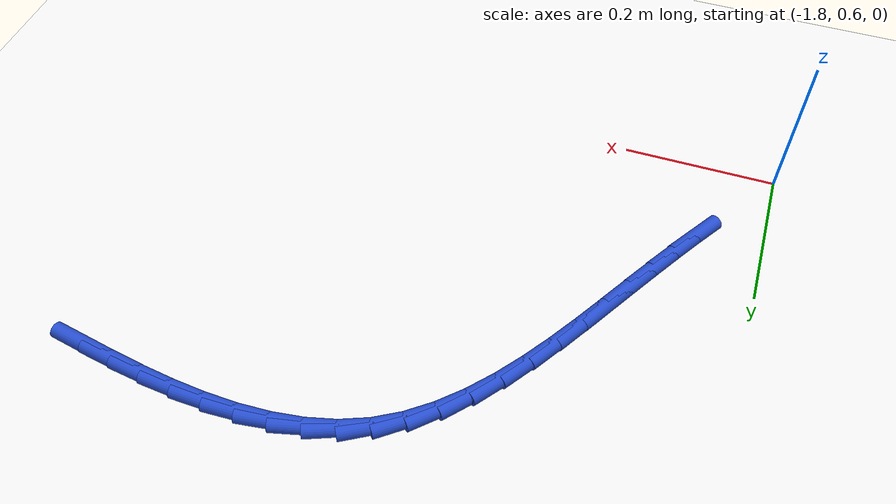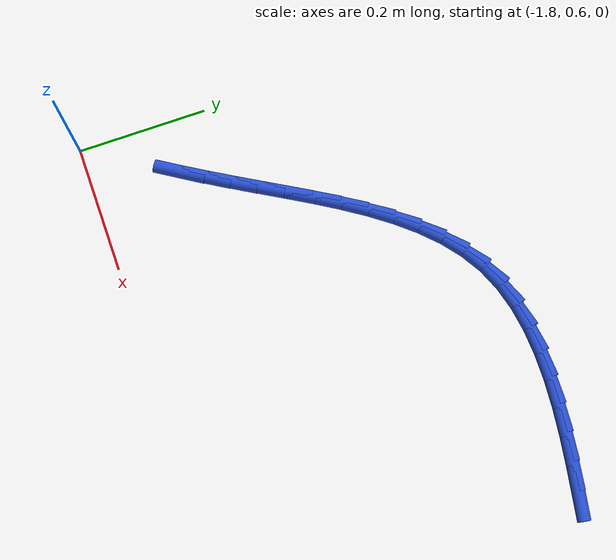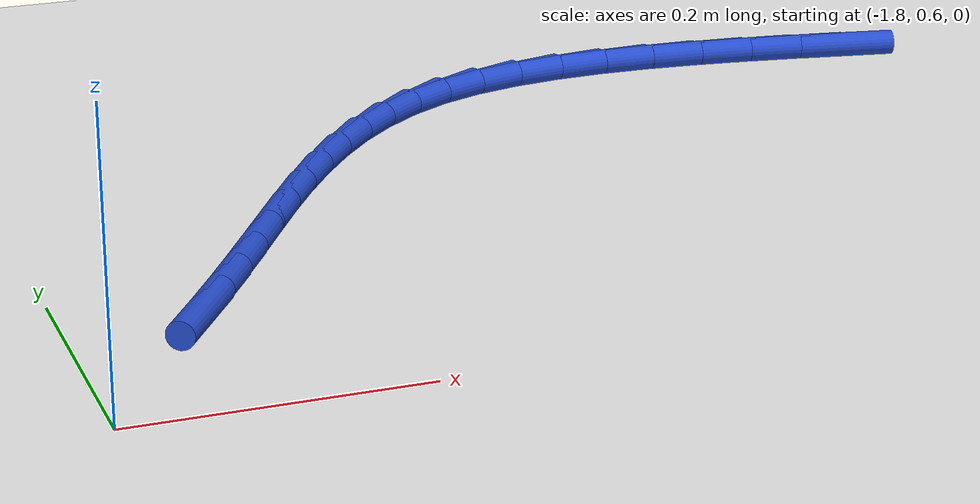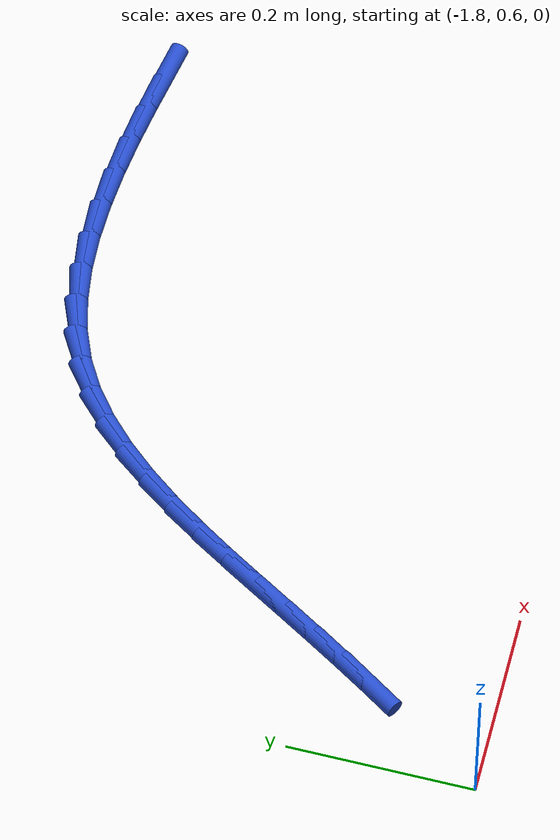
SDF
<sdf version="1.6">
 <world name="default">
  <model name="ground_plane">
   <static>1</static>
   <link name="link">
    <collision name="collision">
     <geometry><plane><normal>0 0 1</normal><size>100 100</size></plane></geometry>
     <surface><friction><ode><mu>100</mu><mu2>50</mu2></ode></friction></surface>
    </collision>
    <visual name="visual">
     <cast_shadows>0</cast_shadows>
     <geometry><plane><normal>0 0 1</normal><size>100 100</size></plane></geometry>
     <material>
      <script><uri>file://media/materials/scripts/gazebo.material</uri><name>Gazebo/WhiteGlow</name></script>
     </material>
    </visual>
   </link>
  </model>
  <model name="line">
   <link name="link_43">
    <pose>-1.0601348989069823 1.1232787393675463 0.01 0 1.57 -0.18332741471772562</pose>
    <collision name="collision">
     <geometry><cylinder><radius>0.01</radius><length>0.08</length></cylinder></geometry>
    </collision>
    <visual name="visual">
     <material>
      <script><name>Gazebo/Blue</name><uri>file://media/materials/scripts/gazebo.material</uri></script>
     </material>
     <geometry><cylinder><radius>0.01</radius><length>0.08</length></cylinder></geometry>
    </visual>
   </link>
   <link name="link_44">
    <pose>-1.1024599388031093 1.1311261919811093 0.01 0 1.57 -0.16194758488630512</pose>
    <collision name="collision">
     <geometry><cylinder><radius>0.01</radius><length>0.08</length></cylinder></geometry>
    </collision>
    <visual name="visual">
     <material>
      <script><name>Gazebo/Blue</name><uri>file://media/materials/scripts/gazebo.material</uri></script>
     </material>
     <geometry><cylinder><radius>0.01</radius><length>0.08</length></cylinder></geometry>
    </visual>
   </link>
   <link name="link_45">
    <pose>-1.1449682665481016 1.138071134470249 0.01 0 1.57 -0.12956506492319844</pose>
    <collision name="collision">
     <geometry><cylinder><radius>0.01</radius><length>0.08</length></cylinder></geometry>
    </collision>
    <visual name="visual">
     <material>
      <script><name>Gazebo/Blue</name><uri>file://media/materials/scripts/gazebo.material</uri></script>
     </material>
     <geometry><cylinder><radius>0.01</radius><length>0.08</length></cylinder></geometry>
    </visual>
   </link>
   <link name="link_46">
    <pose>-1.1873299836293625 1.1435906532974287 0.01 0 1.57 -0.08505546054984053</pose>
    <collision name="collision">
     <geometry><cylinder><radius>0.01</radius><length>0.08</length></cylinder></geometry>
    </collision>
    <visual name="visual">
     <material>
      <script><name>Gazebo/Blue</name><uri>file://media/materials/scripts/gazebo.material</uri></script>
     </material>
     <geometry><cylinder><radius>0.01</radius><length>0.08</length></cylinder></geometry>
    </visual>
   </link>
   <link name="link_47">
    <pose>-1.2292151915342975 1.147161834925113 0.01 0 1.57 -0.02676972377118209</pose>
    <collision name="collision">
     <geometry><cylinder><radius>0.01</radius><length>0.08</length></cylinder></geometry>
    </collision>
    <visual name="visual">
     <material>
      <script><name>Gazebo/Blue</name><uri>file://media/materials/scripts/gazebo.material</uri></script>
     </material>
     <geometry><cylinder><radius>0.01</radius><length>0.08</length></cylinder></geometry>
    </visual>
   </link>
   <link name="link_48">
    <pose>-1.2702939917503113 1.1482617658157661 0.01 0 1.57 0.04738850882438777</pose>
    <collision name="collision">
     <geometry><cylinder><radius>0.01</radius><length>0.08</length></cylinder></geometry>
    </collision>
    <visual name="visual">
     <material>
      <script><name>Gazebo/Blue</name><uri>file://media/materials/scripts/gazebo.material</uri></script>
     </material>
     <geometry><cylinder><radius>0.01</radius><length>0.08</length></cylinder></geometry>
    </visual>
   </link>
   <link name="link_49">
    <pose>-1.310236485764808 1.1463675324318516 0.01 0 1.57 0.13972373295222726</pose>
    <collision name="collision">
     <geometry><cylinder><radius>0.01</radius><length>0.08</length></cylinder></geometry>
    </collision>
    <visual name="visual">
     <material>
      <script><name>Gazebo/Blue</name><uri>file://media/materials/scripts/gazebo.material</uri></script>
     </material>
     <geometry><cylinder><radius>0.01</radius><length>0.08</length></cylinder></geometry>
    </visual>
   </link>
   <link name="link_50">
    <pose>-1.3487127750651937 1.1409562212358342 0.01 0 1.57 0.2521822867691816</pose>
    <collision name="collision">
     <geometry><cylinder><radius>0.01</radius><length>0.08</length></cylinder></geometry>
    </collision>
    <visual name="visual">
     <material>
      <script><name>Gazebo/Blue</name><uri>file://media/materials/scripts/gazebo.material</uri></script>
     </material>
     <geometry><cylinder><radius>0.01</radius><length>0.08</length></cylinder></geometry>
    </visual>
   </link>
   <link name="link_51">
    <pose>-1.3853929611388722 1.1315049186901782 0.01 0 1.57 0.3853005220369759</pose>
    <collision name="collision">
     <geometry><cylinder><radius>0.01</radius><length>0.08</length></cylinder></geometry>
    </collision>
    <visual name="visual">
     <material>
      <script><name>Gazebo/Blue</name><uri>file://media/materials/scripts/gazebo.material</uri></script>
     </material>
     <geometry><cylinder><radius>0.01</radius><length>0.08</length></cylinder></geometry>
    </visual>
   </link>
   <link name="link_52">
    <pose>-1.419947145473248 1.1174907112573467 0.01 0 1.57 0.5320045049402204</pose>
    <collision name="collision">
     <geometry><cylinder><radius>0.01</radius><length>0.08</length></cylinder></geometry>
    </collision>
    <visual name="visual">
     <material>
      <script><name>Gazebo/Blue</name><uri>file://media/materials/scripts/gazebo.material</uri></script>
     </material>
     <geometry><cylinder><radius>0.01</radius><length>0.08</length></cylinder></geometry>
    </visual>
   </link>
   <link name="link_53">
    <pose>-1.4521247197903533 1.09855057813262 0.01 0 1.57 0.6644192034709292</pose>
    <collision name="collision">
     <geometry><cylinder><radius>0.01</radius><length>0.08</length></cylinder></geometry>
    </collision>
    <visual name="visual">
     <material>
      <script><name>Gazebo/Blue</name><uri>file://media/materials/scripts/gazebo.material</uri></script>
     </material>
     <geometry><cylinder><radius>0.01</radius><length>0.08</length></cylinder></geometry>
    </visual>
   </link>
   <link name="link_54">
    <pose>-1.4820625852912466 1.0751029308009559 0.01 0 1.57 0.773546375072764</pose>
    <collision name="collision">
     <geometry><cylinder><radius>0.01</radius><length>0.08</length></cylinder></geometry>
    </collision>
    <visual name="visual">
     <material>
      <script><name>Gazebo/Blue</name><uri>file://media/materials/scripts/gazebo.material</uri></script>
     </material>
     <geometry><cylinder><radius>0.01</radius><length>0.08</length></cylinder></geometry>
    </visual>
   </link>
   <link name="link_55">
    <pose>-1.5100158423467054 1.047804535298178 0.01 0 1.57 0.8605180991703288</pose>
    <collision name="collision">
     <geometry><cylinder><radius>0.01</radius><length>0.08</length></cylinder></geometry>
    </collision>
    <visual name="visual">
     <material>
      <script><name>Gazebo/Blue</name><uri>file://media/materials/scripts/gazebo.material</uri></script>
     </material>
     <geometry><cylinder><radius>0.01</radius><length>0.08</length></cylinder></geometry>
    </visual>
   </link>
   <link name="link_56">
    <pose>-1.5362396201394153 1.0173122157607735 0.01 0 1.57 0.9277339892497062</pose>
    <collision name="collision">
     <geometry><cylinder><radius>0.01</radius><length>0.08</length></cylinder></geometry>
    </collision>
    <visual name="visual">
     <material>
      <script><name>Gazebo/Blue</name><uri>file://media/materials/scripts/gazebo.material</uri></script>
     </material>
     <geometry><cylinder><radius>0.01</radius><length>0.08</length></cylinder></geometry>
    </visual>
   </link>
   <link name="link_57">
    <pose>-1.5609890478520656 0.9842827963252296 0.01 0 1.57 0.9777128486224795</pose>
    <collision name="collision">
     <geometry><cylinder><radius>0.01</radius><length>0.08</length></cylinder></geometry>
    </collision>
    <visual name="visual">
     <material>
      <script><name>Gazebo/Blue</name><uri>file://media/materials/scripts/gazebo.material</uri></script>
     </material>
     <geometry><cylinder><radius>0.01</radius><length>0.08</length></cylinder></geometry>
    </visual>
   </link>
   <link name="link_58">
    <pose>-1.5845192546673426 0.9493731011280323 0.01 0 1.57 1.012537431328297</pose>
    <collision name="collision">
     <geometry><cylinder><radius>0.01</radius><length>0.08</length></cylinder></geometry>
    </collision>
    <visual name="visual">
     <material>
      <script><name>Gazebo/Blue</name><uri>file://media/materials/scripts/gazebo.material</uri></script>
     </material>
     <geometry><cylinder><radius>0.01</radius><length>0.08</length></cylinder></geometry>
    </visual>
   </link>
   <link name="link_59">
    <pose>-1.607085369767934 0.9132399543056702 0.01 0 1.57 1.033643201926098</pose>
    <collision name="collision">
     <geometry><cylinder><radius>0.01</radius><length>0.08</length></cylinder></geometry>
    </collision>
    <visual name="visual">
     <material>
      <script><name>Gazebo/Blue</name><uri>file://media/materials/scripts/gazebo.material</uri></script>
     </material>
     <geometry><cylinder><radius>0.01</radius><length>0.08</length></cylinder></geometry>
    </visual>
   </link>
   <link name="link_60">
    <pose>-1.6289425223365264 0.8765401799946287 0.01 0 1.57 1.0417496330772755</pose>
    <collision name="collision">
     <geometry><cylinder><radius>0.01</radius><length>0.08</length></cylinder></geometry>
    </collision>
    <visual name="visual">
     <material>
      <script><name>Gazebo/Blue</name><uri>file://media/materials/scripts/gazebo.material</uri></script>
     </material>
     <geometry><cylinder><radius>0.01</radius><length>0.08</length></cylinder></geometry>
    </visual>
   </link>
   <link name="link_61">
    <pose>-1.6503458415558088 0.8399306023313952 0.01 0 1.57 1.0383585355463547</pose>
    <collision name="collision">
     <geometry><cylinder><radius>0.01</radius><length>0.08</length></cylinder></geometry>
    </collision>
    <visual name="visual">
     <material>
      <script><name>Gazebo/Blue</name><uri>file://media/materials/scripts/gazebo.material</uri></script>
     </material>
     <geometry><cylinder><radius>0.01</radius><length>0.08</length></cylinder></geometry>
    </visual>
   </link>
   <link name="link_62">
    <pose>-1.671538058365785 0.8039626002420689 0.01 0 1.57 1.0295249355186633</pose>
    <collision name="collision">
     <geometry><cylinder><radius>0.01</radius><length>0.08</length></cylinder></geometry>
    </collision>
    <visual name="visual">
     <material>
      <script><name>Gazebo/Blue</name><uri>file://media/materials/scripts/gazebo.material</uri></script>
     </material>
     <geometry><cylinder><radius>0.01</radius><length>0.08</length></cylinder></geometry>
    </visual>
   </link>
   <link name="link_63">
    <pose>-1.692709798552582 0.7687444060669937 0.01 0 1.57 1.0167913188544366</pose>
    <collision name="collision">
     <geometry><cylinder><radius>0.01</radius><length>0.08</length></cylinder></geometry>
    </collision>
    <visual name="visual">
     <material>
      <script><name>Gazebo/Blue</name><uri>file://media/materials/scripts/gazebo.material</uri></script>
     </material>
     <geometry><cylinder><radius>0.01</radius><length>0.08</length></cylinder></geometry>
    </visual>
   </link>
   <link name="link_64">
    <pose>-1.7140380020775752 0.7342678562421205 0.01 0 1.57 1.000095883421319</pose>
    <collision name="collision">
     <geometry><cylinder><radius>0.01</radius><length>0.08</length></cylinder></geometry>
    </collision>
    <visual name="visual">
     <material>
      <script><name>Gazebo/Blue</name><uri>file://media/materials/scripts/gazebo.material</uri></script>
     </material>
     <geometry><cylinder><radius>0.01</radius><length>0.08</length></cylinder></geometry>
    </visual>
   </link>
  </model>
 </world>
</sdf>
